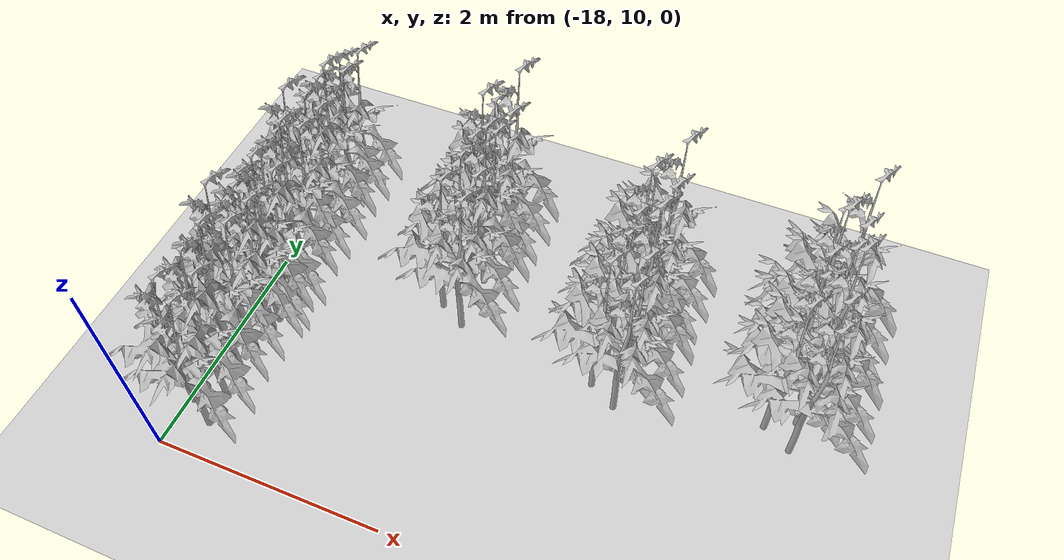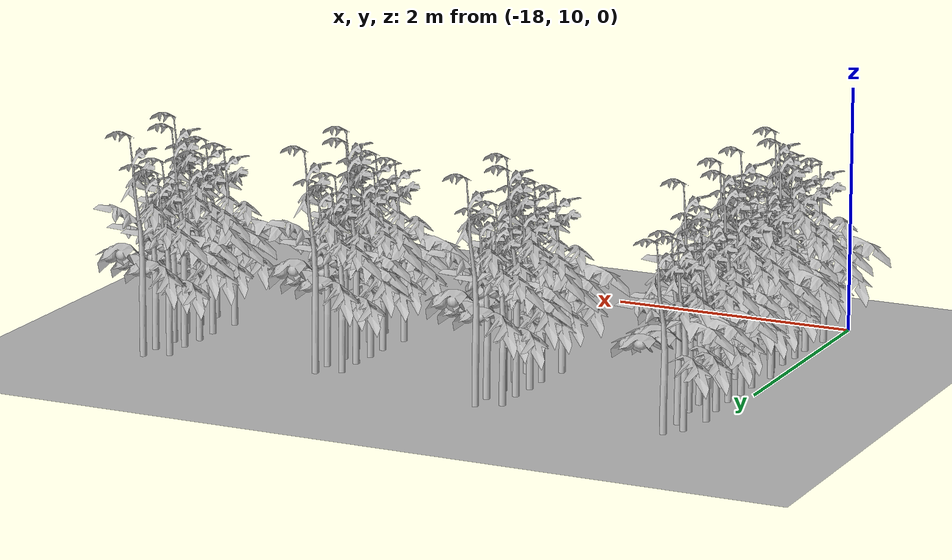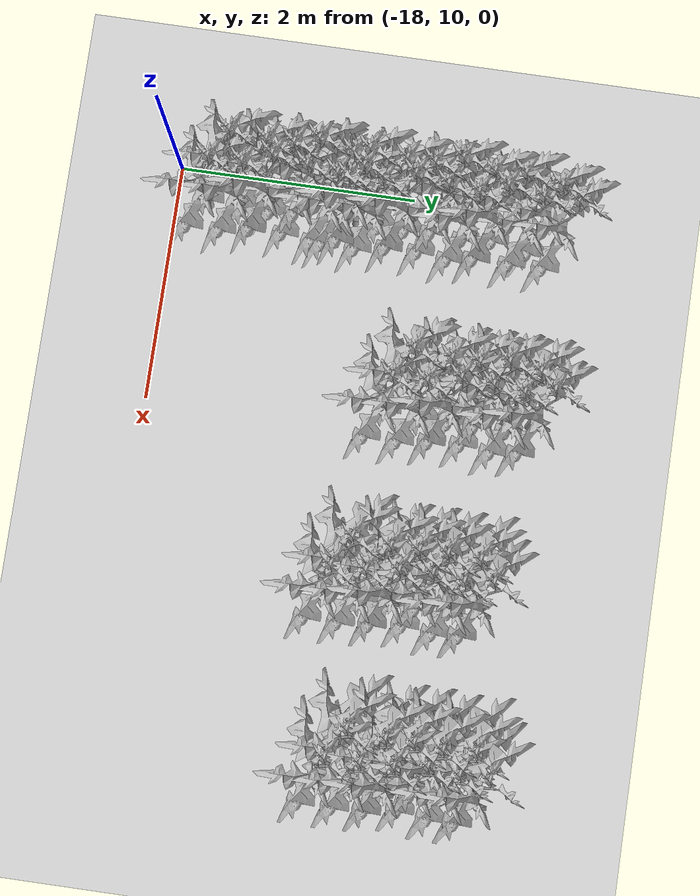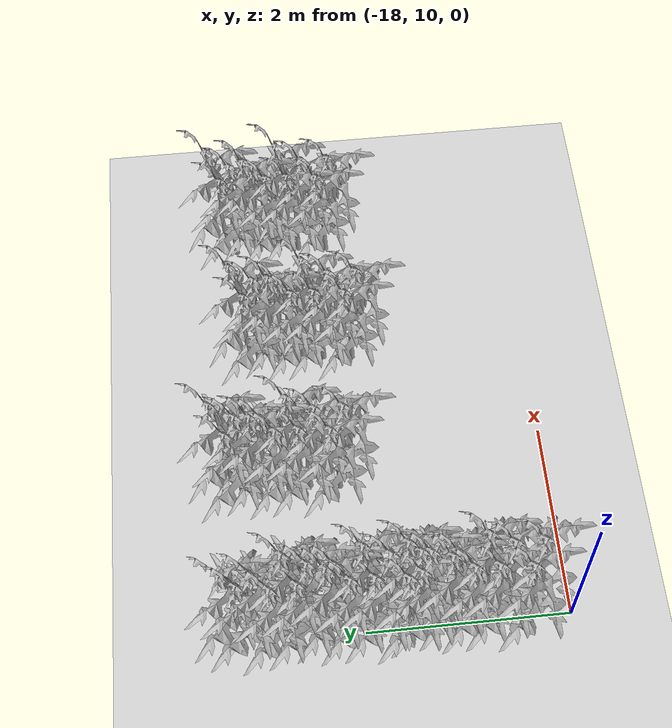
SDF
<sdf version="1.6">
 <world name="default">
  <model name="ground_plane">
   <static>1</static>
   <link name="link">
    <collision name="collision">
     <geometry><plane><normal>0 0 1</normal><size>100 100</size></plane></geometry>
     <surface>
      <contact><collide_bitmask>65535</collide_bitmask></contact>
      <friction><ode><mu>100</mu><mu2>50</mu2></ode></friction>
     </surface>
    </collision>
    <visual name="visual">
     <cast_shadows>0</cast_shadows>
     <geometry><plane><normal>0 0 1</normal><size>100 100</size></plane></geometry>
     <material>
      <script><uri>file://media/materials/scripts/gazebo.material</uri><name>Gazebo/Grey</name></script>
     </material>
    </visual>
   </link>
  </model>
  <model name="Front_Plant_1_21">
   <model name="tomato_plant_medium">
    <static>1</static>
    <link name="link">
     <collision name="collision">
      <pose>0 0 0 1.5708 -0 0</pose>
      <geometry><mesh><scale>0.5 0.5 0.5</scale><uri>model://stick/meshes/stick.dae</uri></mesh></geometry>
     </collision>
     <visual name="visual">
      <geometry>
       <mesh><scale>5e-06 5e-06 6e-06</scale><uri>model://tomato_plant_medium/meshes/tomato-plant.dae</uri></mesh>
      </geometry>
     </visual>
    </link>
    <pose>0.087453 -0.595994 0.012396 0 -0 0</pose>
   </model>
   <model name="tomato_plant_medium_0">
    <static>1</static>
    <link name="link">
     <collision name="collision">
      <pose>0 0 0 1.5708 -0 0</pose>
      <geometry><mesh><scale>0.5 0.5 0.5</scale><uri>model://stick/meshes/stick.dae</uri></mesh></geometry>
     </collision>
     <visual name="visual">
      <geometry>
       <mesh><scale>5e-06 5e-06 6e-06</scale><uri>model://tomato_plant_medium/meshes/tomato-plant.dae</uri></mesh>
      </geometry>
     </visual>
    </link>
    <pose>-0.086166 -0.251822 0.012396 0 -0 0</pose>
   </model>
   <model name="tomato_plant_medium_1">
    <static>1</static>
    <link name="link">
     <collision name="collision">
      <pose>0 0 0 1.5708 -0 0</pose>
      <geometry><mesh><scale>0.5 0.5 0.5</scale><uri>model://stick/meshes/stick.dae</uri></mesh></geometry>
     </collision>
     <visual name="visual">
      <geometry>
       <mesh><scale>5e-06 5e-06 6e-06</scale><uri>model://tomato_plant_medium/meshes/tomato-plant.dae</uri></mesh>
      </geometry>
     </visual>
    </link>
    <pose>0.080199 0.118127 0.012396 0 -0 0</pose>
   </model>
   <model name="tomato_plant_small">
    <static>1</static>
    <link name="link">
     <collision name="collision">
      <pose>0 0 0 1.5708 -0 0</pose>
      <geometry><mesh><scale>0.5 0.45 0.5</scale><uri>model://stick/meshes/stick.dae</uri></mesh></geometry>
     </collision>
     <visual name="visual">
      <geometry>
       <mesh><scale>5e-06 5e-06 5e-06</scale><uri>model://tomato_plant_small/meshes/tomato-plant.dae</uri></mesh>
      </geometry>
     </visual>
    </link>
    <pose>0.099683 -1.12011 0.012396 0 -0 0</pose>
   </model>
   <model name="tomato_plant_small_0">
    <static>1</static>
    <link name="link">
     <collision name="collision">
      <pose>0 0 0 1.5708 -0 0</pose>
      <geometry><mesh><scale>0.5 0.45 0.5</scale><uri>model://stick/meshes/stick.dae</uri></mesh></geometry>
     </collision>
     <visual name="visual">
      <geometry>
       <mesh><scale>5e-06 5e-06 5e-06</scale><uri>model://tomato_plant_small/meshes/tomato-plant.dae</uri></mesh>
      </geometry>
     </visual>
    </link>
    <pose>-0.138771 -0.983982 0.012396 0 -0 0</pose>
   </model>
   <model name="tomato_plant_small_1">
    <static>1</static>
    <link name="link">
     <collision name="collision">
      <pose>0 0 0 1.5708 -0 0</pose>
      <geometry><mesh><scale>0.5 0.45 0.5</scale><uri>model://stick/meshes/stick.dae</uri></mesh></geometry>
     </collision>
     <visual name="visual">
      <geometry>
       <mesh><scale>5e-06 5e-06 5e-06</scale><uri>model://tomato_plant_small/meshes/tomato-plant.dae</uri></mesh>
      </geometry>
     </visual>
    </link>
    <pose>0.101334 -0.848814 0.012396 0 -0 0</pose>
   </model>
   <model name="tomato_plant_small_2">
    <static>1</static>
    <link name="link">
     <collision name="collision">
      <pose>0 0 0 1.5708 -0 0</pose>
      <geometry><mesh><scale>0.5 0.45 0.5</scale><uri>model://stick/meshes/stick.dae</uri></mesh></geometry>
     </collision>
     <visual name="visual">
      <geometry>
       <mesh><scale>5e-06 5e-06 5e-06</scale><uri>model://tomato_plant_small/meshes/tomato-plant.dae</uri></mesh>
      </geometry>
     </visual>
    </link>
    <pose>-0.103369 -0.683189 0.012396 0 -0 0</pose>
   </model>
   <model name="tomato_plant_small_3">
    <static>1</static>
    <link name="link">
     <collision name="collision">
      <pose>0 0 0 1.5708 -0 0</pose>
      <geometry><mesh><scale>0.5 0.45 0.5</scale><uri>model://stick/meshes/stick.dae</uri></mesh></geometry>
     </collision>
     <visual name="visual">
      <geometry>
       <mesh><scale>5e-06 5e-06 5e-06</scale><uri>model://tomato_plant_small/meshes/tomato-plant.dae</uri></mesh>
      </geometry>
     </visual>
    </link>
    <pose>-0.104381 -0.464811 0.012396 0 -0 0</pose>
   </model>
   <model name="tomato_plant_small_4">
    <static>1</static>
    <link name="link">
     <collision name="collision">
      <pose>0 0 0 1.5708 -0 0</pose>
      <geometry><mesh><scale>0.5 0.45 0.5</scale><uri>model://stick/meshes/stick.dae</uri></mesh></geometry>
     </collision>
     <visual name="visual">
      <geometry>
       <mesh><scale>5e-06 5e-06 5e-06</scale><uri>model://tomato_plant_small/meshes/tomato-plant.dae</uri></mesh>
      </geometry>
     </visual>
    </link>
    <pose>0.055604 -0.336879 0.012396 0 -0 0</pose>
   </model>
   <model name="tomato_plant_small_5">
    <static>1</static>
    <link name="link">
     <collision name="collision">
      <pose>0 0 0 1.5708 -0 0</pose>
      <geometry><mesh><scale>0.5 0.45 0.5</scale><uri>model://stick/meshes/stick.dae</uri></mesh></geometry>
     </collision>
     <visual name="visual">
      <geometry>
       <mesh><scale>5e-06 5e-06 5e-06</scale><uri>model://tomato_plant_small/meshes/tomato-plant.dae</uri></mesh>
      </geometry>
     </visual>
    </link>
    <pose>0.085059 -0.092572 0.012396 0 -0 0</pose>
   </model>
   <model name="tomato_plant_small_6">
    <static>1</static>
    <link name="link">
     <collision name="collision">
      <pose>0 0 0 1.5708 -0 0</pose>
      <geometry><mesh><scale>0.5 0.45 0.5</scale><uri>model://stick/meshes/stick.dae</uri></mesh></geometry>
     </collision>
     <visual name="visual">
      <geometry>
       <mesh><scale>5e-06 5e-06 5e-06</scale><uri>model://tomato_plant_small/meshes/tomato-plant.dae</uri></mesh>
      </geometry>
     </visual>
    </link>
    <pose>-0.096345 0.008888 0.012396 0 -0 0</pose>
   </model>
   <static>0</static>
   <pose>-17.8019 11.3924 0 0 -0 0</pose>
  </model>
  <model name="Front_Plant_1_22">
   <model name="tomato_plant_medium">
    <static>1</static>
    <link name="link">
     <collision name="collision">
      <pose>0 0 0 1.5708 -0 0</pose>
      <geometry><mesh><scale>0.5 0.5 0.5</scale><uri>model://stick/meshes/stick.dae</uri></mesh></geometry>
     </collision>
     <visual name="visual">
      <geometry>
       <mesh><scale>5e-06 5e-06 6e-06</scale><uri>model://tomato_plant_medium/meshes/tomato-plant.dae</uri></mesh>
      </geometry>
     </visual>
    </link>
    <pose>0.087453 -0.595994 0.012396 0 -0 0</pose>
   </model>
   <model name="tomato_plant_medium_0">
    <static>1</static>
    <link name="link">
     <collision name="collision">
      <pose>0 0 0 1.5708 -0 0</pose>
      <geometry><mesh><scale>0.5 0.5 0.5</scale><uri>model://stick/meshes/stick.dae</uri></mesh></geometry>
     </collision>
     <visual name="visual">
      <geometry>
       <mesh><scale>5e-06 5e-06 6e-06</scale><uri>model://tomato_plant_medium/meshes/tomato-plant.dae</uri></mesh>
      </geometry>
     </visual>
    </link>
    <pose>-0.086166 -0.251822 0.012396 0 -0 0</pose>
   </model>
   <model name="tomato_plant_medium_1">
    <static>1</static>
    <link name="link">
     <collision name="collision">
      <pose>0 0 0 1.5708 -0 0</pose>
      <geometry><mesh><scale>0.5 0.5 0.5</scale><uri>model://stick/meshes/stick.dae</uri></mesh></geometry>
     </collision>
     <visual name="visual">
      <geometry>
       <mesh><scale>5e-06 5e-06 6e-06</scale><uri>model://tomato_plant_medium/meshes/tomato-plant.dae</uri></mesh>
      </geometry>
     </visual>
    </link>
    <pose>0.080199 0.118127 0.012396 0 -0 0</pose>
   </model>
   <model name="tomato_plant_small">
    <static>1</static>
    <link name="link">
     <collision name="collision">
      <pose>0 0 0 1.5708 -0 0</pose>
      <geometry><mesh><scale>0.5 0.45 0.5</scale><uri>model://stick/meshes/stick.dae</uri></mesh></geometry>
     </collision>
     <visual name="visual">
      <geometry>
       <mesh><scale>5e-06 5e-06 5e-06</scale><uri>model://tomato_plant_small/meshes/tomato-plant.dae</uri></mesh>
      </geometry>
     </visual>
    </link>
    <pose>0.099683 -1.12011 0.012396 0 -0 0</pose>
   </model>
   <model name="tomato_plant_small_0">
    <static>1</static>
    <link name="link">
     <collision name="collision">
      <pose>0 0 0 1.5708 -0 0</pose>
      <geometry><mesh><scale>0.5 0.45 0.5</scale><uri>model://stick/meshes/stick.dae</uri></mesh></geometry>
     </collision>
     <visual name="visual">
      <geometry>
       <mesh><scale>5e-06 5e-06 5e-06</scale><uri>model://tomato_plant_small/meshes/tomato-plant.dae</uri></mesh>
      </geometry>
     </visual>
    </link>
    <pose>-0.138771 -0.983982 0.012396 0 -0 0</pose>
   </model>
   <model name="tomato_plant_small_1">
    <static>1</static>
    <link name="link">
     <collision name="collision">
      <pose>0 0 0 1.5708 -0 0</pose>
      <geometry><mesh><scale>0.5 0.45 0.5</scale><uri>model://stick/meshes/stick.dae</uri></mesh></geometry>
     </collision>
     <visual name="visual">
      <geometry>
       <mesh><scale>5e-06 5e-06 5e-06</scale><uri>model://tomato_plant_small/meshes/tomato-plant.dae</uri></mesh>
      </geometry>
     </visual>
    </link>
    <pose>0.101334 -0.848814 0.012396 0 -0 0</pose>
   </model>
   <model name="tomato_plant_small_2">
    <static>1</static>
    <link name="link">
     <collision name="collision">
      <pose>0 0 0 1.5708 -0 0</pose>
      <geometry><mesh><scale>0.5 0.45 0.5</scale><uri>model://stick/meshes/stick.dae</uri></mesh></geometry>
     </collision>
     <visual name="visual">
      <geometry>
       <mesh><scale>5e-06 5e-06 5e-06</scale><uri>model://tomato_plant_small/meshes/tomato-plant.dae</uri></mesh>
      </geometry>
     </visual>
    </link>
    <pose>-0.103369 -0.683189 0.012396 0 -0 0</pose>
   </model>
   <model name="tomato_plant_small_3">
    <static>1</static>
    <link name="link">
     <collision name="collision">
      <pose>0 0 0 1.5708 -0 0</pose>
      <geometry><mesh><scale>0.5 0.45 0.5</scale><uri>model://stick/meshes/stick.dae</uri></mesh></geometry>
     </collision>
     <visual name="visual">
      <geometry>
       <mesh><scale>5e-06 5e-06 5e-06</scale><uri>model://tomato_plant_small/meshes/tomato-plant.dae</uri></mesh>
      </geometry>
     </visual>
    </link>
    <pose>-0.104381 -0.464811 0.012396 0 -0 0</pose>
   </model>
   <model name="tomato_plant_small_4">
    <static>1</static>
    <link name="link">
     <collision name="collision">
      <pose>0 0 0 1.5708 -0 0</pose>
      <geometry><mesh><scale>0.5 0.45 0.5</scale><uri>model://stick/meshes/stick.dae</uri></mesh></geometry>
     </collision>
     <visual name="visual">
      <geometry>
       <mesh><scale>5e-06 5e-06 5e-06</scale><uri>model://tomato_plant_small/meshes/tomato-plant.dae</uri></mesh>
      </geometry>
     </visual>
    </link>
    <pose>0.055604 -0.336879 0.012396 0 -0 0</pose>
   </model>
   <model name="tomato_plant_small_5">
    <static>1</static>
    <link name="link">
     <collision name="collision">
      <pose>0 0 0 1.5708 -0 0</pose>
      <geometry><mesh><scale>0.5 0.45 0.5</scale><uri>model://stick/meshes/stick.dae</uri></mesh></geometry>
     </collision>
     <visual name="visual">
      <geometry>
       <mesh><scale>5e-06 5e-06 5e-06</scale><uri>model://tomato_plant_small/meshes/tomato-plant.dae</uri></mesh>
      </geometry>
     </visual>
    </link>
    <pose>0.085059 -0.092572 0.012396 0 -0 0</pose>
   </model>
   <model name="tomato_plant_small_6">
    <static>1</static>
    <link name="link">
     <collision name="collision">
      <pose>0 0 0 1.5708 -0 0</pose>
      <geometry><mesh><scale>0.5 0.45 0.5</scale><uri>model://stick/meshes/stick.dae</uri></mesh></geometry>
     </collision>
     <visual name="visual">
      <geometry>
       <mesh><scale>5e-06 5e-06 5e-06</scale><uri>model://tomato_plant_small/meshes/tomato-plant.dae</uri></mesh>
      </geometry>
     </visual>
    </link>
    <pose>-0.096345 0.008888 0.012396 0 -0 0</pose>
   </model>
   <static>0</static>
   <pose>-17.8037 12.5078 0 0 -0 0</pose>
  </model>
  <model name="tomato_plant_small_7">
   <static>1</static>
   <link name="link">
    <collision name="collision">
     <pose>0 0 0 1.5708 -0 0</pose>
     <geometry><mesh><scale>0.5 0.45 0.5</scale><uri>model://stick/meshes/stick.dae</uri></mesh></geometry>
    </collision>
    <visual name="visual">
     <geometry>
      <mesh><scale>5e-06 5e-06 5e-06</scale><uri>model://tomato_plant_small/meshes/tomato-plant.dae</uri></mesh>
     </geometry>
    </visual>
   </link>
   <pose>-17.922 12.7594 0 0 -0 0</pose>
  </model>
  <model name="tomato_plant_small_8">
   <static>1</static>
   <link name="link">
    <collision name="collision">
     <pose>0 0 0 1.5708 -0 0</pose>
     <geometry><mesh><scale>0.5 0.45 0.5</scale><uri>model://stick/meshes/stick.dae</uri></mesh></geometry>
    </collision>
    <visual name="visual">
     <geometry>
      <mesh><scale>5e-06 5e-06 5e-06</scale><uri>model://tomato_plant_small/meshes/tomato-plant.dae</uri></mesh>
     </geometry>
    </visual>
   </link>
   <pose>-17.7548 12.9205 0 0 -0 0</pose>
  </model>
  <model name="tomato_plant_small_9">
   <static>1</static>
   <link name="link">
    <collision name="collision">
     <pose>0 0 0 1.5708 -0 0</pose>
     <geometry><mesh><scale>0.5 0.45 0.5</scale><uri>model://stick/meshes/stick.dae</uri></mesh></geometry>
    </collision>
    <visual name="visual">
     <geometry>
      <mesh><scale>5e-06 5e-06 5e-06</scale><uri>model://tomato_plant_small/meshes/tomato-plant.dae</uri></mesh>
     </geometry>
    </visual>
   </link>
   <pose>-17.8611 13.0541 0 0 -0 0</pose>
  </model>
  <model name="tomato_plant_small_10">
   <static>1</static>
   <link name="link">
    <collision name="collision">
     <pose>0 0 0 1.5708 -0 0</pose>
     <geometry><mesh><scale>0.5 0.45 0.5</scale><uri>model://stick/meshes/stick.dae</uri></mesh></geometry>
    </collision>
    <visual name="visual">
     <geometry>
      <mesh><scale>5e-06 5e-06 5e-06</scale><uri>model://tomato_plant_small/meshes/tomato-plant.dae</uri></mesh>
     </geometry>
    </visual>
   </link>
   <pose>-17.7564 13.1951 0 0 -0 0</pose>
  </model>
  <model name="Front_Plant_1_24">
   <model name="tomato_plant_medium">
    <static>1</static>
    <link name="link">
     <collision name="collision">
      <pose>0 0 0 1.5708 -0 0</pose>
      <geometry><mesh><scale>0.5 0.5 0.5</scale><uri>model://stick/meshes/stick.dae</uri></mesh></geometry>
     </collision>
     <visual name="visual">
      <geometry>
       <mesh><scale>5e-06 5e-06 6e-06</scale><uri>model://tomato_plant_medium/meshes/tomato-plant.dae</uri></mesh>
      </geometry>
     </visual>
    </link>
    <pose>0.087453 -0.595994 0.012396 0 -0 0</pose>
   </model>
   <model name="tomato_plant_medium_0">
    <static>1</static>
    <link name="link">
     <collision name="collision">
      <pose>0 0 0 1.5708 -0 0</pose>
      <geometry><mesh><scale>0.5 0.5 0.5</scale><uri>model://stick/meshes/stick.dae</uri></mesh></geometry>
     </collision>
     <visual name="visual">
      <geometry>
       <mesh><scale>5e-06 5e-06 6e-06</scale><uri>model://tomato_plant_medium/meshes/tomato-plant.dae</uri></mesh>
      </geometry>
     </visual>
    </link>
    <pose>-0.086166 -0.251822 0.012396 0 -0 0</pose>
   </model>
   <model name="tomato_plant_medium_1">
    <static>1</static>
    <link name="link">
     <collision name="collision">
      <pose>0 0 0 1.5708 -0 0</pose>
      <geometry><mesh><scale>0.5 0.5 0.5</scale><uri>model://stick/meshes/stick.dae</uri></mesh></geometry>
     </collision>
     <visual name="visual">
      <geometry>
       <mesh><scale>5e-06 5e-06 6e-06</scale><uri>model://tomato_plant_medium/meshes/tomato-plant.dae</uri></mesh>
      </geometry>
     </visual>
    </link>
    <pose>0.080199 0.118127 0.012396 0 -0 0</pose>
   </model>
   <model name="tomato_plant_small">
    <static>1</static>
    <link name="link">
     <collision name="collision">
      <pose>0 0 0 1.5708 -0 0</pose>
      <geometry><mesh><scale>0.5 0.45 0.5</scale><uri>model://stick/meshes/stick.dae</uri></mesh></geometry>
     </collision>
     <visual name="visual">
      <geometry>
       <mesh><scale>5e-06 5e-06 5e-06</scale><uri>model://tomato_plant_small/meshes/tomato-plant.dae</uri></mesh>
      </geometry>
     </visual>
    </link>
    <pose>0.099683 -1.12011 0.012396 0 -0 0</pose>
   </model>
   <model name="tomato_plant_small_0">
    <static>1</static>
    <link name="link">
     <collision name="collision">
      <pose>0 0 0 1.5708 -0 0</pose>
      <geometry><mesh><scale>0.5 0.45 0.5</scale><uri>model://stick/meshes/stick.dae</uri></mesh></geometry>
     </collision>
     <visual name="visual">
      <geometry>
       <mesh><scale>5e-06 5e-06 5e-06</scale><uri>model://tomato_plant_small/meshes/tomato-plant.dae</uri></mesh>
      </geometry>
     </visual>
    </link>
    <pose>-0.138771 -0.983982 0.012396 0 -0 0</pose>
   </model>
   <model name="tomato_plant_small_1">
    <static>1</static>
    <link name="link">
     <collision name="collision">
      <pose>0 0 0 1.5708 -0 0</pose>
      <geometry><mesh><scale>0.5 0.45 0.5</scale><uri>model://stick/meshes/stick.dae</uri></mesh></geometry>
     </collision>
     <visual name="visual">
      <geometry>
       <mesh><scale>5e-06 5e-06 5e-06</scale><uri>model://tomato_plant_small/meshes/tomato-plant.dae</uri></mesh>
      </geometry>
     </visual>
    </link>
    <pose>0.101334 -0.848814 0.012396 0 -0 0</pose>
   </model>
   <model name="tomato_plant_small_2">
    <static>1</static>
    <link name="link">
     <collision name="collision">
      <pose>0 0 0 1.5708 -0 0</pose>
      <geometry><mesh><scale>0.5 0.45 0.5</scale><uri>model://stick/meshes/stick.dae</uri></mesh></geometry>
     </collision>
     <visual name="visual">
      <geometry>
       <mesh><scale>5e-06 5e-06 5e-06</scale><uri>model://tomato_plant_small/meshes/tomato-plant.dae</uri></mesh>
      </geometry>
     </visual>
    </link>
    <pose>-0.103369 -0.683189 0.012396 0 -0 0</pose>
   </model>
   <model name="tomato_plant_small_3">
    <static>1</static>
    <link name="link">
     <collision name="collision">
      <pose>0 0 0 1.5708 -0 0</pose>
      <geometry><mesh><scale>0.5 0.45 0.5</scale><uri>model://stick/meshes/stick.dae</uri></mesh></geometry>
     </collision>
     <visual name="visual">
      <geometry>
       <mesh><scale>5e-06 5e-06 5e-06</scale><uri>model://tomato_plant_small/meshes/tomato-plant.dae</uri></mesh>
      </geometry>
     </visual>
    </link>
    <pose>-0.104381 -0.464811 0.012396 0 -0 0</pose>
   </model>
   <model name="tomato_plant_small_4">
    <static>1</static>
    <link name="link">
     <collision name="collision">
      <pose>0 0 0 1.5708 -0 0</pose>
      <geometry><mesh><scale>0.5 0.45 0.5</scale><uri>model://stick/meshes/stick.dae</uri></mesh></geometry>
     </collision>
     <visual name="visual">
      <geometry>
       <mesh><scale>5e-06 5e-06 5e-06</scale><uri>model://tomato_plant_small/meshes/tomato-plant.dae</uri></mesh>
      </geometry>
     </visual>
    </link>
    <pose>0.055604 -0.336879 0.012396 0 -0 0</pose>
   </model>
   <model name="tomato_plant_small_5">
    <static>1</static>
    <link name="link">
     <collision name="collision">
      <pose>0 0 0 1.5708 -0 0</pose>
      <geometry><mesh><scale>0.5 0.45 0.5</scale><uri>model://stick/meshes/stick.dae</uri></mesh></geometry>
     </collision>
     <visual name="visual">
      <geometry>
       <mesh><scale>5e-06 5e-06 5e-06</scale><uri>model://tomato_plant_small/meshes/tomato-plant.dae</uri></mesh>
      </geometry>
     </visual>
    </link>
    <pose>0.085059 -0.092572 0.012396 0 -0 0</pose>
   </model>
   <model name="tomato_plant_small_6">
    <static>1</static>
    <link name="link">
     <collision name="collision">
      <pose>0 0 0 1.5708 -0 0</pose>
      <geometry><mesh><scale>0.5 0.45 0.5</scale><uri>model://stick/meshes/stick.dae</uri></mesh></geometry>
     </collision>
     <visual name="visual">
      <geometry>
       <mesh><scale>5e-06 5e-06 5e-06</scale><uri>model://tomato_plant_small/meshes/tomato-plant.dae</uri></mesh>
      </geometry>
     </visual>
    </link>
    <pose>-0.096345 0.008888 0.012396 0 -0 0</pose>
   </model>
   <static>0</static>
   <pose>-16.2826 13.0701 0 0 -0 0</pose>
  </model>
  <model name="Front_Plant_1_26">
   <model name="tomato_plant_medium">
    <static>1</static>
    <link name="link">
     <collision name="collision">
      <pose>0 0 0 1.5708 -0 0</pose>
      <geometry><mesh><scale>0.5 0.5 0.5</scale><uri>model://stick/meshes/stick.dae</uri></mesh></geometry>
     </collision>
     <visual name="visual">
      <geometry>
       <mesh><scale>5e-06 5e-06 6e-06</scale><uri>model://tomato_plant_medium/meshes/tomato-plant.dae</uri></mesh>
      </geometry>
     </visual>
    </link>
    <pose>0.087453 -0.595994 0.012396 0 -0 0</pose>
   </model>
   <model name="tomato_plant_medium_0">
    <static>1</static>
    <link name="link">
     <collision name="collision">
      <pose>0 0 0 1.5708 -0 0</pose>
      <geometry><mesh><scale>0.5 0.5 0.5</scale><uri>model://stick/meshes/stick.dae</uri></mesh></geometry>
     </collision>
     <visual name="visual">
      <geometry>
       <mesh><scale>5e-06 5e-06 6e-06</scale><uri>model://tomato_plant_medium/meshes/tomato-plant.dae</uri></mesh>
      </geometry>
     </visual>
    </link>
    <pose>-0.086166 -0.251822 0.012396 0 -0 0</pose>
   </model>
   <model name="tomato_plant_medium_1">
    <static>1</static>
    <link name="link">
     <collision name="collision">
      <pose>0 0 0 1.5708 -0 0</pose>
      <geometry><mesh><scale>0.5 0.5 0.5</scale><uri>model://stick/meshes/stick.dae</uri></mesh></geometry>
     </collision>
     <visual name="visual">
      <geometry>
       <mesh><scale>5e-06 5e-06 6e-06</scale><uri>model://tomato_plant_medium/meshes/tomato-plant.dae</uri></mesh>
      </geometry>
     </visual>
    </link>
    <pose>0.080199 0.118127 0.012396 0 -0 0</pose>
   </model>
   <model name="tomato_plant_small">
    <static>1</static>
    <link name="link">
     <collision name="collision">
      <pose>0 0 0 1.5708 -0 0</pose>
      <geometry><mesh><scale>0.5 0.45 0.5</scale><uri>model://stick/meshes/stick.dae</uri></mesh></geometry>
     </collision>
     <visual name="visual">
      <geometry>
       <mesh><scale>5e-06 5e-06 5e-06</scale><uri>model://tomato_plant_small/meshes/tomato-plant.dae</uri></mesh>
      </geometry>
     </visual>
    </link>
    <pose>0.099683 -1.12011 0.012396 0 -0 0</pose>
   </model>
   <model name="tomato_plant_small_0">
    <static>1</static>
    <link name="link">
     <collision name="collision">
      <pose>0 0 0 1.5708 -0 0</pose>
      <geometry><mesh><scale>0.5 0.45 0.5</scale><uri>model://stick/meshes/stick.dae</uri></mesh></geometry>
     </collision>
     <visual name="visual">
      <geometry>
       <mesh><scale>5e-06 5e-06 5e-06</scale><uri>model://tomato_plant_small/meshes/tomato-plant.dae</uri></mesh>
      </geometry>
     </visual>
    </link>
    <pose>-0.138771 -0.983982 0.012396 0 -0 0</pose>
   </model>
   <model name="tomato_plant_small_1">
    <static>1</static>
    <link name="link">
     <collision name="collision">
      <pose>0 0 0 1.5708 -0 0</pose>
      <geometry><mesh><scale>0.5 0.45 0.5</scale><uri>model://stick/meshes/stick.dae</uri></mesh></geometry>
     </collision>
     <visual name="visual">
      <geometry>
       <mesh><scale>5e-06 5e-06 5e-06</scale><uri>model://tomato_plant_small/meshes/tomato-plant.dae</uri></mesh>
      </geometry>
     </visual>
    </link>
    <pose>0.101334 -0.848814 0.012396 0 -0 0</pose>
   </model>
   <model name="tomato_plant_small_2">
    <static>1</static>
    <link name="link">
     <collision name="collision">
      <pose>0 0 0 1.5708 -0 0</pose>
      <geometry><mesh><scale>0.5 0.45 0.5</scale><uri>model://stick/meshes/stick.dae</uri></mesh></geometry>
     </collision>
     <visual name="visual">
      <geometry>
       <mesh><scale>5e-06 5e-06 5e-06</scale><uri>model://tomato_plant_small/meshes/tomato-plant.dae</uri></mesh>
      </geometry>
     </visual>
    </link>
    <pose>-0.103369 -0.683189 0.012396 0 -0 0</pose>
   </model>
   <model name="tomato_plant_small_3">
    <static>1</static>
    <link name="link">
     <collision name="collision">
      <pose>0 0 0 1.5708 -0 0</pose>
      <geometry><mesh><scale>0.5 0.45 0.5</scale><uri>model://stick/meshes/stick.dae</uri></mesh></geometry>
     </collision>
     <visual name="visual">
      <geometry>
       <mesh><scale>5e-06 5e-06 5e-06</scale><uri>model://tomato_plant_small/meshes/tomato-plant.dae</uri></mesh>
      </geometry>
     </visual>
    </link>
    <pose>-0.104381 -0.464811 0.012396 0 -0 0</pose>
   </model>
   <model name="tomato_plant_small_4">
    <static>1</static>
    <link name="link">
     <collision name="collision">
      <pose>0 0 0 1.5708 -0 0</pose>
      <geometry><mesh><scale>0.5 0.45 0.5</scale><uri>model://stick/meshes/stick.dae</uri></mesh></geometry>
     </collision>
     <visual name="visual">
      <geometry>
       <mesh><scale>5e-06 5e-06 5e-06</scale><uri>model://tomato_plant_small/meshes/tomato-plant.dae</uri></mesh>
      </geometry>
     </visual>
    </link>
    <pose>0.055604 -0.336879 0.012396 0 -0 0</pose>
   </model>
   <model name="tomato_plant_small_5">
    <static>1</static>
    <link name="link">
     <collision name="collision">
      <pose>0 0 0 1.5708 -0 0</pose>
      <geometry><mesh><scale>0.5 0.45 0.5</scale><uri>model://stick/meshes/stick.dae</uri></mesh></geometry>
     </collision>
     <visual name="visual">
      <geometry>
       <mesh><scale>5e-06 5e-06 5e-06</scale><uri>model://tomato_plant_small/meshes/tomato-plant.dae</uri></mesh>
      </geometry>
     </visual>
    </link>
    <pose>0.085059 -0.092572 0.012396 0 -0 0</pose>
   </model>
   <model name="tomato_plant_small_6">
    <static>1</static>
    <link name="link">
     <collision name="collision">
      <pose>0 0 0 1.5708 -0 0</pose>
      <geometry><mesh><scale>0.5 0.45 0.5</scale><uri>model://stick/meshes/stick.dae</uri></mesh></geometry>
     </collision>
     <visual name="visual">
      <geometry>
       <mesh><scale>5e-06 5e-06 5e-06</scale><uri>model://tomato_plant_small/meshes/tomato-plant.dae</uri></mesh>
      </geometry>
     </visual>
    </link>
    <pose>-0.096345 0.008888 0.012396 0 -0 0</pose>
   </model>
   <static>0</static>
   <pose>-14.7775 12.8072 0 0 -0 0</pose>
  </model>
  <model name="Front_Plant_1_30">
   <model name="tomato_plant_medium">
    <static>1</static>
    <link name="link">
     <collision name="collision">
      <pose>0 0 0 1.5708 -0 0</pose>
      <geometry><mesh><scale>0.5 0.5 0.5</scale><uri>model://stick/meshes/stick.dae</uri></mesh></geometry>
     </collision>
     <visual name="visual">
      <geometry>
       <mesh><scale>5e-06 5e-06 6e-06</scale><uri>model://tomato_plant_medium/meshes/tomato-plant.dae</uri></mesh>
      </geometry>
     </visual>
    </link>
    <pose>0.087453 -0.595994 0.012396 0 -0 0</pose>
   </model>
   <model name="tomato_plant_medium_0">
    <static>1</static>
    <link name="link">
     <collision name="collision">
      <pose>0 0 0 1.5708 -0 0</pose>
      <geometry><mesh><scale>0.5 0.5 0.5</scale><uri>model://stick/meshes/stick.dae</uri></mesh></geometry>
     </collision>
     <visual name="visual">
      <geometry>
       <mesh><scale>5e-06 5e-06 6e-06</scale><uri>model://tomato_plant_medium/meshes/tomato-plant.dae</uri></mesh>
      </geometry>
     </visual>
    </link>
    <pose>-0.086166 -0.251822 0.012396 0 -0 0</pose>
   </model>
   <model name="tomato_plant_medium_1">
    <static>1</static>
    <link name="link">
     <collision name="collision">
      <pose>0 0 0 1.5708 -0 0</pose>
      <geometry><mesh><scale>0.5 0.5 0.5</scale><uri>model://stick/meshes/stick.dae</uri></mesh></geometry>
     </collision>
     <visual name="visual">
      <geometry>
       <mesh><scale>5e-06 5e-06 6e-06</scale><uri>model://tomato_plant_medium/meshes/tomato-plant.dae</uri></mesh>
      </geometry>
     </visual>
    </link>
    <pose>0.080199 0.118127 0.012396 0 -0 0</pose>
   </model>
   <model name="tomato_plant_small">
    <static>1</static>
    <link name="link">
     <collision name="collision">
      <pose>0 0 0 1.5708 -0 0</pose>
      <geometry><mesh><scale>0.5 0.45 0.5</scale><uri>model://stick/meshes/stick.dae</uri></mesh></geometry>
     </collision>
     <visual name="visual">
      <geometry>
       <mesh><scale>5e-06 5e-06 5e-06</scale><uri>model://tomato_plant_small/meshes/tomato-plant.dae</uri></mesh>
      </geometry>
     </visual>
    </link>
    <pose>0.099683 -1.12011 0.012396 0 -0 0</pose>
   </model>
   <model name="tomato_plant_small_0">
    <static>1</static>
    <link name="link">
     <collision name="collision">
      <pose>0 0 0 1.5708 -0 0</pose>
      <geometry><mesh><scale>0.5 0.45 0.5</scale><uri>model://stick/meshes/stick.dae</uri></mesh></geometry>
     </collision>
     <visual name="visual">
      <geometry>
       <mesh><scale>5e-06 5e-06 5e-06</scale><uri>model://tomato_plant_small/meshes/tomato-plant.dae</uri></mesh>
      </geometry>
     </visual>
    </link>
    <pose>-0.138771 -0.983982 0.012396 0 -0 0</pose>
   </model>
   <model name="tomato_plant_small_1">
    <static>1</static>
    <link name="link">
     <collision name="collision">
      <pose>0 0 0 1.5708 -0 0</pose>
      <geometry><mesh><scale>0.5 0.45 0.5</scale><uri>model://stick/meshes/stick.dae</uri></mesh></geometry>
     </collision>
     <visual name="visual">
      <geometry>
       <mesh><scale>5e-06 5e-06 5e-06</scale><uri>model://tomato_plant_small/meshes/tomato-plant.dae</uri></mesh>
      </geometry>
     </visual>
    </link>
    <pose>0.101334 -0.848814 0.012396 0 -0 0</pose>
   </model>
   <model name="tomato_plant_small_2">
    <static>1</static>
    <link name="link">
     <collision name="collision">
      <pose>0 0 0 1.5708 -0 0</pose>
      <geometry><mesh><scale>0.5 0.45 0.5</scale><uri>model://stick/meshes/stick.dae</uri></mesh></geometry>
     </collision>
     <visual name="visual">
      <geometry>
       <mesh><scale>5e-06 5e-06 5e-06</scale><uri>model://tomato_plant_small/meshes/tomato-plant.dae</uri></mesh>
      </geometry>
     </visual>
    </link>
    <pose>-0.103369 -0.683189 0.012396 0 -0 0</pose>
   </model>
   <model name="tomato_plant_small_3">
    <static>1</static>
    <link name="link">
     <collision name="collision">
      <pose>0 0 0 1.5708 -0 0</pose>
      <geometry><mesh><scale>0.5 0.45 0.5</scale><uri>model://stick/meshes/stick.dae</uri></mesh></geometry>
     </collision>
     <visual name="visual">
      <geometry>
       <mesh><scale>5e-06 5e-06 5e-06</scale><uri>model://tomato_plant_small/meshes/tomato-plant.dae</uri></mesh>
      </geometry>
     </visual>
    </link>
    <pose>-0.104381 -0.464811 0.012396 0 -0 0</pose>
   </model>
   <model name="tomato_plant_small_4">
    <static>1</static>
    <link name="link">
     <collision name="collision">
      <pose>0 0 0 1.5708 -0 0</pose>
      <geometry><mesh><scale>0.5 0.45 0.5</scale><uri>model://stick/meshes/stick.dae</uri></mesh></geometry>
     </collision>
     <visual name="visual">
      <geometry>
       <mesh><scale>5e-06 5e-06 5e-06</scale><uri>model://tomato_plant_small/meshes/tomato-plant.dae</uri></mesh>
      </geometry>
     </visual>
    </link>
    <pose>0.055604 -0.336879 0.012396 0 -0 0</pose>
   </model>
   <model name="tomato_plant_small_5">
    <static>1</static>
    <link name="link">
     <collision name="collision">
      <pose>0 0 0 1.5708 -0 0</pose>
      <geometry><mesh><scale>0.5 0.45 0.5</scale><uri>model://stick/meshes/stick.dae</uri></mesh></geometry>
     </collision>
     <visual name="visual">
      <geometry>
       <mesh><scale>5e-06 5e-06 5e-06</scale><uri>model://tomato_plant_small/meshes/tomato-plant.dae</uri></mesh>
      </geometry>
     </visual>
    </link>
    <pose>0.085059 -0.092572 0.012396 0 -0 0</pose>
   </model>
   <model name="tomato_plant_small_6">
    <static>1</static>
    <link name="link">
     <collision name="collision">
      <pose>0 0 0 1.5708 -0 0</pose>
      <geometry><mesh><scale>0.5 0.45 0.5</scale><uri>model://stick/meshes/stick.dae</uri></mesh></geometry>
     </collision>
     <visual name="visual">
      <geometry>
       <mesh><scale>5e-06 5e-06 5e-06</scale><uri>model://tomato_plant_small/meshes/tomato-plant.dae</uri></mesh>
      </geometry>
     </visual>
    </link>
    <pose>-0.096345 0.008888 0.012396 0 -0 0</pose>
   </model>
   <static>0</static>
   <pose>-13.3337 12.9698 0 0 -0 0</pose>
  </model>
 </world>
</sdf>
